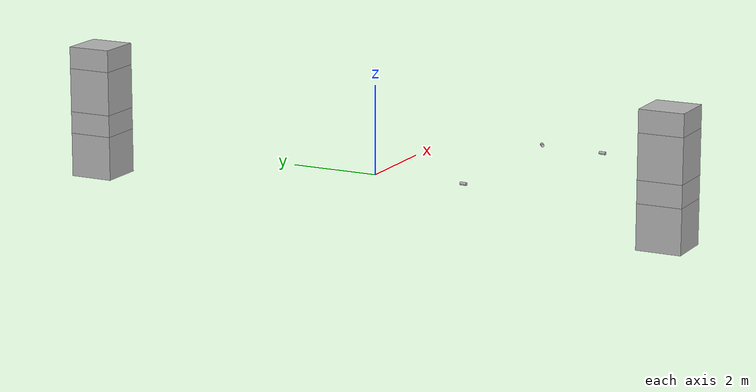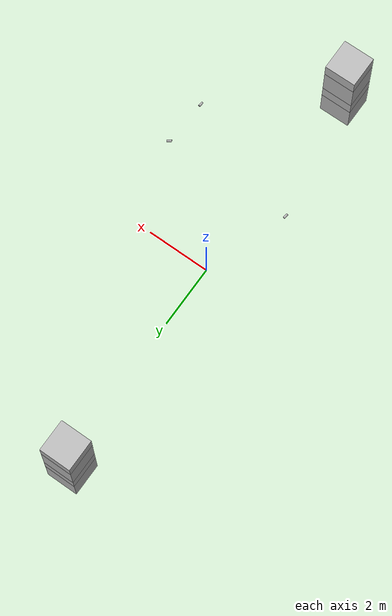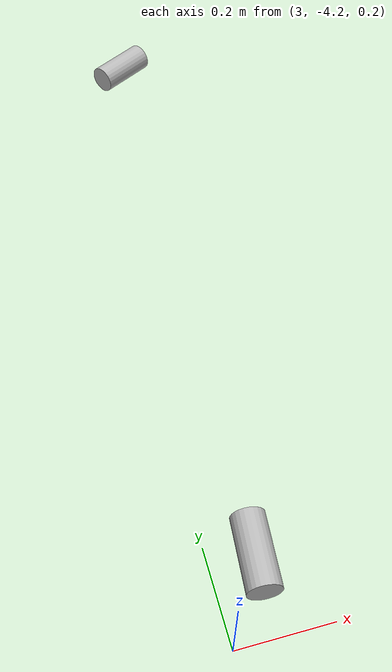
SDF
<sdf version="1.6">
 <world name="default">
  <light name="sun" type="directional">
   <pose>0 0 10 0 -0 0</pose>
   <diffuse>0.8 0.8 0.8 1</diffuse>
   <specular>0.2 0.2 0.2 1</specular>
   <attenuation>
    <range>1000</range>
    <constant>0.9</constant>
    <linear>0.01</linear>
    <quadratic>0.001</quadratic>
   </attenuation>
   <direction>-0.5 0.1 -0.9</direction>
  </light>
  <gravity>0 0 -9.8</gravity>
  <magnetic_field>6e-06 2.3e-05 -4.2e-05</magnetic_field>
  <atmosphere type="adiabatic"/>
  <physics name="default_physics" default="0" type="ode">
   <max_step_size>0.005</max_step_size>
   <real_time_factor>1</real_time_factor>
   <real_time_update_rate>200</real_time_update_rate>
  </physics>
  <scene>
   <sky><clouds><speed>12</speed></clouds></sky>
   <ambient>0.4 0.4 0.4 1</ambient>
   <background>0.7 0.7 0.7 1</background>
   <shadows>1</shadows>
  </scene>
  <audio><device>default</device></audio>
  <spherical_coordinates>
   <surface_model>EARTH_WGS84</surface_model>
   <latitude_deg>0</latitude_deg>
   <longitude_deg>0</longitude_deg>
   <elevation>0</elevation>
   <heading_deg>0</heading_deg>
  </spherical_coordinates>
  <model name="ghost_beer_0005">
   <pose>-0.986564 -2.59358 0.324745 1.5708 -0 -0.097275</pose>
   <static>1</static>
   <link name="ghost_beer_0005_link">
    <visual name="visual">
     <geometry><cylinder><radius>0.035</radius><length>0.15</length></cylinder></geometry>
     <material>
      <script>
       <uri>model://beer/materials/scripts</uri>
       <uri>model://beer/materials/textures</uri>
       <name>Beer/Diffuse</name>
      </script>
     </material>
    </visual>
   </link>
  </model>
  <model name="ghost_location_marker_a_0010">
   <pose>-0.173834 -6.89413 0.273595 0 -0 0</pose>
   <static>1</static>
   <link name="ghost_location_marker_a_0010_link">
    <pose>0 0 1 0 -0 0</pose>
    <collision name="collision"><geometry><box><size>1 1 2</size></box></geometry></collision>
    <visual name="foot"><pose>0 0 -1.5 0 -0 0</pose><geometry><box><size>1 1 1</size></box></geometry></visual>
    <visual name="visual_bottom">
     <pose>0 0 -0.75 0 -0 0</pose>
     <geometry><box><size>1 1 0.5</size></box></geometry>
     <material>
      <script>
       <uri>model://location_marker_a/materials/scripts</uri>
       <uri>model://location_marker_a/materials/textures</uri>
       <name>location_marker_a/logo</name>
      </script>
     </material>
    </visual>
    <visual name="visual_top">
     <pose>0 0 0.75 0 -0 0</pose>
     <geometry><box><size>1 1 0.5</size></box></geometry>
     <material>
      <script>
       <uri>model://location_marker_a/materials/scripts</uri>
       <uri>model://location_marker_a/materials/textures</uri>
       <name>location_marker_a/logo</name>
      </script>
     </material>
    </visual>
    <visual name="visual_code">
     <geometry><box><size>1 1 1</size></box></geometry>
     <material>
      <script>
       <uri>model://location_marker_a/materials/scripts</uri>
       <uri>model://location_marker_a/materials/textures</uri>
       <name>location_marker_a/qr_code</name>
      </script>
     </material>
    </visual>
   </link>
  </model>
  <model name="ghost_location_marker_b_0011">
   <pose>-0.227779 6.88529 0.297551 0 -0 0</pose>
   <static>1</static>
   <link name="ghost_location_marker_b_0011_link">
    <pose>0 0 1 0 -0 0</pose>
    <collision name="collision"><geometry><box><size>1 1 2</size></box></geometry></collision>
    <visual name="foot"><pose>0 0 -1.5 0 -0 0</pose><geometry><box><size>1 1 1</size></box></geometry></visual>
    <visual name="visual_bottom">
     <pose>0 0 -0.75 0 -0 0</pose>
     <geometry><box><size>1 1 0.5</size></box></geometry>
     <material>
      <script>
       <uri>model://location_marker_b/materials/scripts</uri>
       <uri>model://location_marker_b/materials/textures</uri>
       <name>location_marker_b/logo</name>
      </script>
     </material>
    </visual>
    <visual name="visual_top">
     <pose>0 0 0.75 0 -0 0</pose>
     <geometry><box><size>1 1 0.5</size></box></geometry>
     <material>
      <script>
       <uri>model://location_marker_b/materials/scripts</uri>
       <uri>model://location_marker_b/materials/textures</uri>
       <name>location_marker_b/logo</name>
      </script>
     </material>
    </visual>
    <visual name="visual_code">
     <geometry><box><size>1 1 1</size></box></geometry>
     <material>
      <script>
       <uri>model://location_marker_b/materials/scripts</uri>
       <uri>model://location_marker_b/materials/textures</uri>
       <name>location_marker_b/qr_code</name>
      </script>
     </material>
    </visual>
   </link>
  </model>
  <model name="ghost_beer_0005_clone">
   <pose>3.08308 -4.06498 0.276173 1.5708 -0 -0.097275</pose>
   <static>1</static>
   <link name="ghost_beer_0005_link">
    <visual name="visual">
     <geometry><cylinder><radius>0.035</radius><length>0.15</length></cylinder></geometry>
     <material>
      <script>
       <uri>model://beer/materials/scripts</uri>
       <uri>model://beer/materials/textures</uri>
       <name>Beer/Diffuse</name>
      </script>
     </material>
    </visual>
   </link>
  </model>
  <model name="ghost_beer_0005_clone_0">
   <pose>3.16488 -2.57261 0.276192 1.5708 -0.276334 -1.02141</pose>
   <static>1</static>
   <link name="ghost_beer_0005_link">
    <visual name="visual">
     <geometry><cylinder><radius>0.035</radius><length>0.15</length></cylinder></geometry>
     <material>
      <script>
       <uri>model://beer/materials/scripts</uri>
       <uri>model://beer/materials/textures</uri>
       <name>Beer/Diffuse</name>
      </script>
     </material>
    </visual>
   </link>
  </model>
 </world>
</sdf>
